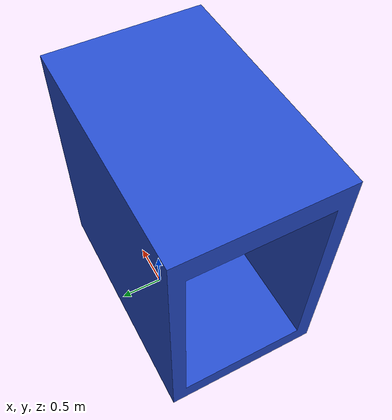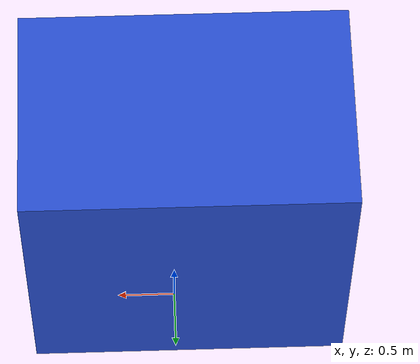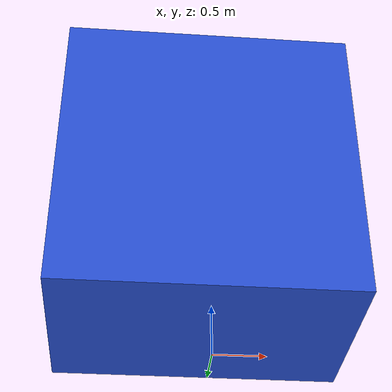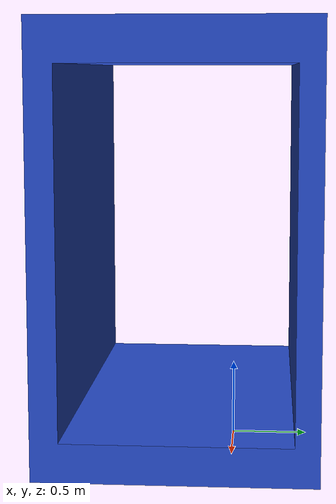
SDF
<?xml version="1.0" ?>
<sdf version="1.5">
  <model name="Elevator">
    <pose>0 0 -0.5 0 0 0 </pose>
    <link name="body">
      <pose>0 0 0 0 0 0</pose>
      <inertial>
        <pose>-0.05 0 0 0 0 0</pose>
        <mass>7.5</mass>  <!-- Don't touch; magic! -->
        <inertia>
          <ixx>1</ixx>
          <ixy>0</ixy>
          <ixz>0</ixz>
          <iyy>1</iyy>
          <iyz>0</iyz>
          <izz>1</izz>
        </inertia>
      </inertial>
      <collision name="collision">
        <geometry>
          <mesh>
            <uri>file://elevator.dae</uri>
          </mesh>
        </geometry>
        <surface>
          <contact>
            <ode/>
          </contact>
          <friction>
            <ode/>
          </friction>
        </surface>
      </collision>
      <visual name="visual">
        <geometry>
          <mesh>
            <uri>file://elevator.dae</uri>
          </mesh>
        </geometry>
        <material>
          <script>
            <name>Gazebo/Blue</name>
            <uri>__default__</uri>
          </script>
        </material>
      </visual>
      <gravity>0</gravity>
      <velocity_decay>
        <linear>0</linear>
        <angular>0</angular>
      </velocity_decay>
      <self_collide>1</self_collide>
    </link>

    <joint name='translation_constraint' type='prismatic'>
      <child>body</child>
      <parent>world</parent>
      <axis>
        <xyz>0 0 -1</xyz>
        <limit>
          <lower>-40</lower>
          <upper>40</upper>
          <effort>0</effort>
          <velocity>0</velocity>
        </limit>
        <dynamics/>
      </axis>
    </joint>

  <plugin name="elevator_plugin" filename="libelevator.so">
    <model_domain_space>elevator_</model_domain_space>
    <floor_heights>0.84108, 3.65461, 6.85066, 10.0470, 13.24549, 16.45915, 19.65369</floor_heights>
    <speed>1.5</speed>
    <force>100</force>
  </plugin>

  </model>
</sdf>
